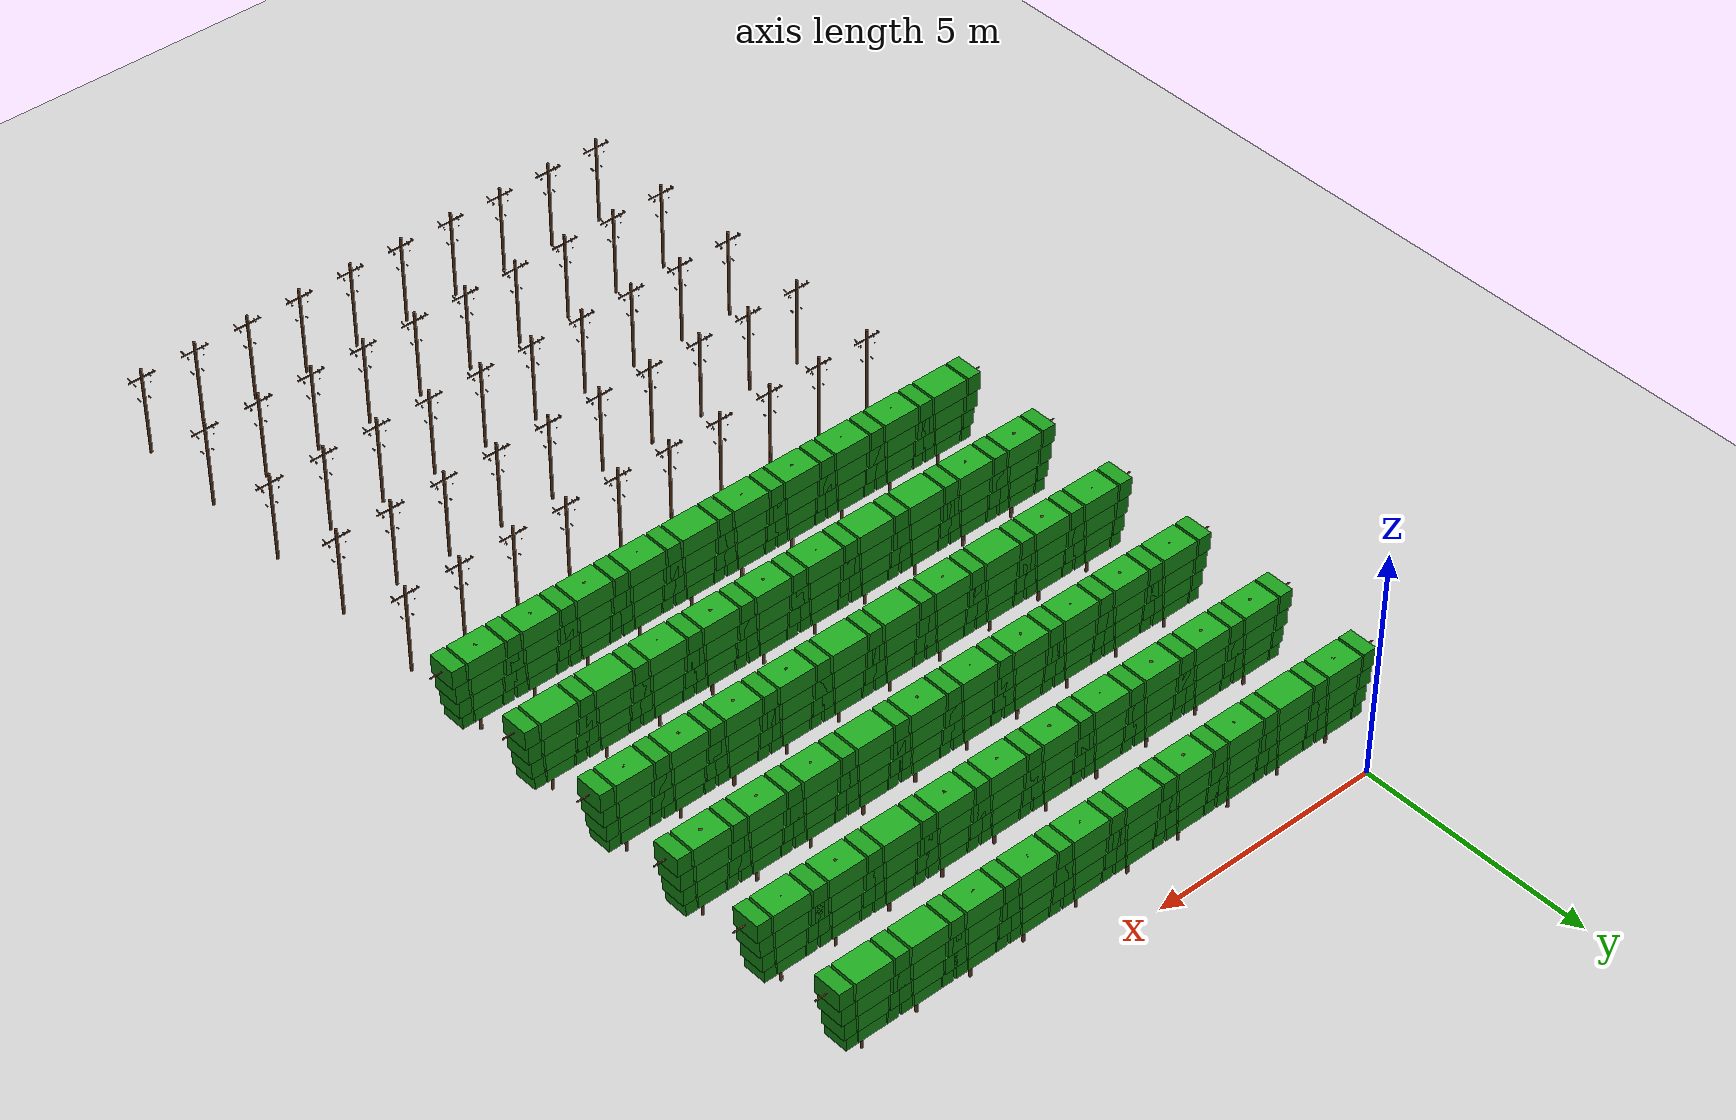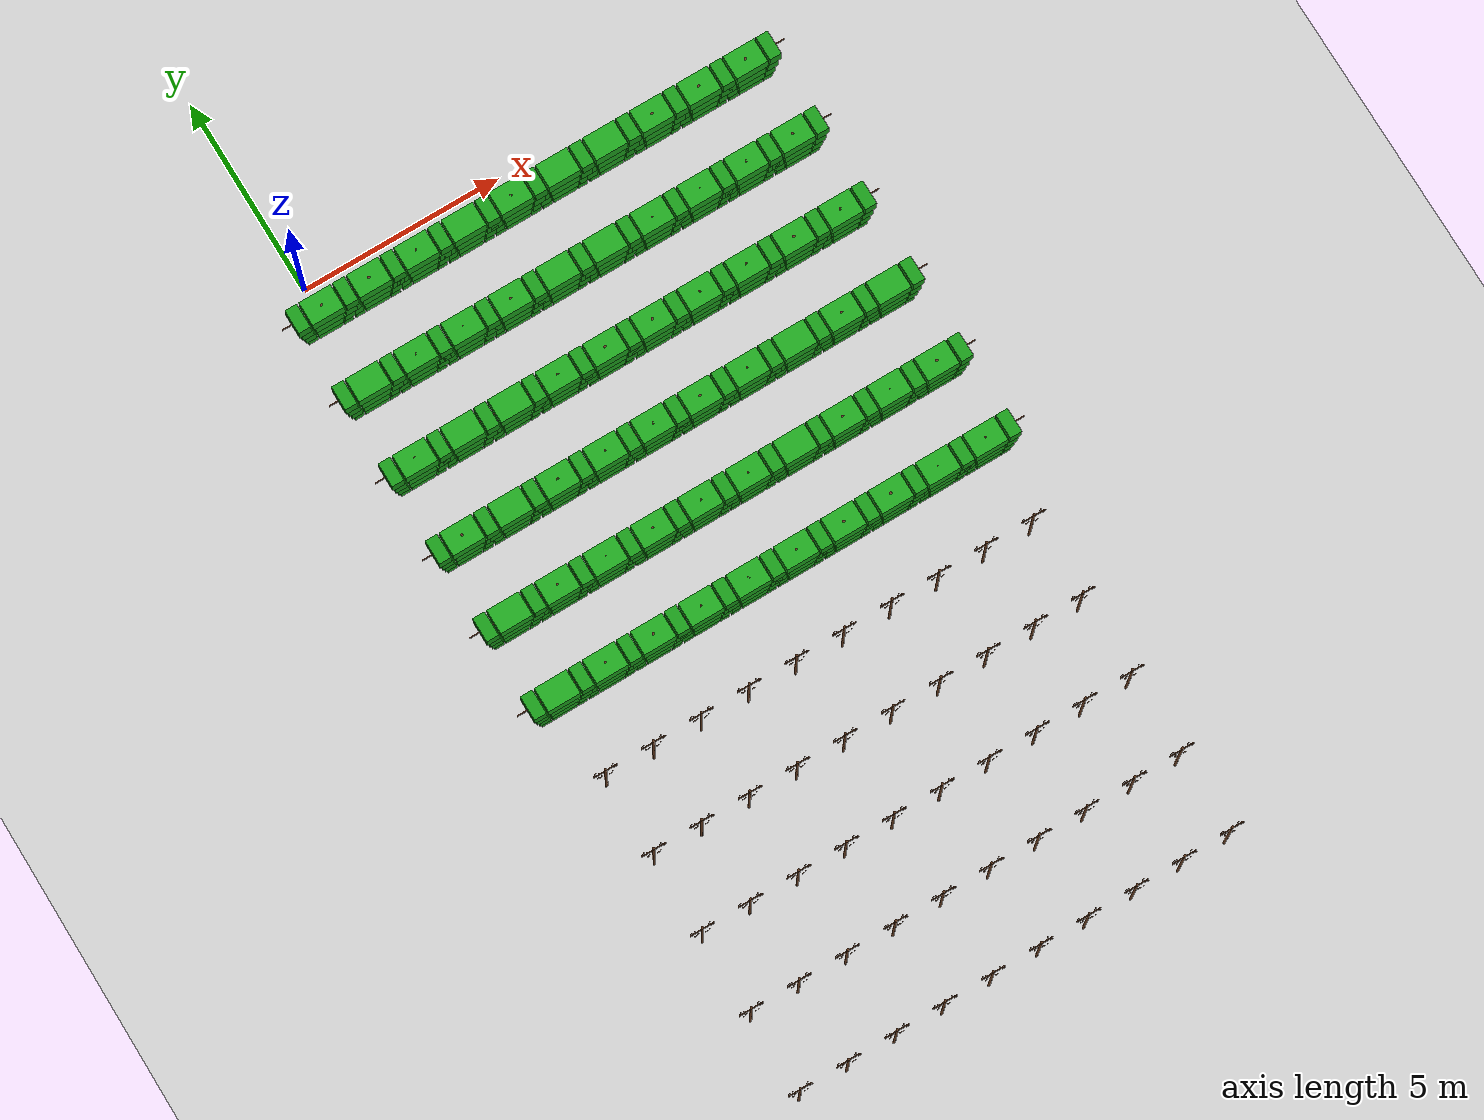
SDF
<?xml version="1.0" ?>
<sdf version="1.6">
  <world name="vineyard_world">

    <physics name="default_physics" default="0" type="ode">
      <max_step_size>0.001</max_step_size>
      <real_time_factor>1</real_time_factor>
      <real_time_update_rate>1000</real_time_update_rate>
    </physics>

    <gravity>0 0 -9.81</gravity>

    <scene>
      <ambient>0.4 0.4 0.4 1</ambient>
      <background>0.7 0.8 1 1</background>
      <shadows>true</shadows>
    </scene>

    <include>
      <uri>model://sun</uri>
    </include>

    <!-- Sol avec collision -->
    <model name="ground">
      <static>true</static>
      <link name="link">
        <collision name="collision">
          <geometry>
            <plane>
              <normal>0 0 1</normal>
              <size>100 100</size>
            </plane>
          </geometry>
          <surface>
            <friction>
              <ode>
                <mu>100</mu>
                <mu2>50</mu2>
              </ode>
            </friction>
          </surface>
        </collision>
        <visual name="visual">
          <geometry>
            <plane>
              <normal>0 0 1</normal>
              <size>100 100</size>
            </plane>
          </geometry>
          <material>
            <ambient>0.8 0.8 0.8 1</ambient>
            <diffuse>0.8 0.8 0.8 1</diffuse>
          </material>
        </visual>
      </link>
    </model>

    <!-- RANGÉE 1: y = -1.0 (AVEC feuilles) -->
    <include>
      <uri>model://vine_with_leaves</uri>
      <name>row1_vine_1</name>
      <pose>0 -1.0 0 0 0 0</pose>
    </include>
    <include>
      <uri>model://vine_with_leaves</uri>
      <name>row1_vine_2</name>
      <pose>1.2 -1.0 0 0 0 0</pose>
    </include>
    <include>
      <uri>model://vine_with_leaves</uri>
      <name>row1_vine_3</name>
      <pose>2.4 -1.0 0 0 0 0</pose>
    </include>
    <include>
      <uri>model://vine_with_leaves</uri>
      <name>row1_vine_4</name>
      <pose>3.6 -1.0 0 0 0 0</pose>
    </include>
    <include>
      <uri>model://vine_with_leaves</uri>
      <name>row1_vine_5</name>
      <pose>4.8 -1.0 0 0 0 0</pose>
    </include>
    <include>
      <uri>model://vine_with_leaves</uri>
      <name>row1_vine_6</name>
      <pose>6.0 -1.0 0 0 0 0</pose>
    </include>
    <include>
      <uri>model://vine_with_leaves</uri>
      <name>row1_vine_7</name>
      <pose>7.2 -1.0 0 0 0 0</pose>
    </include>
    <include>
      <uri>model://vine_with_leaves</uri>
      <name>row1_vine_8</name>
      <pose>8.4 -1.0 0 0 0 0</pose>
    </include>
    <include>
      <uri>model://vine_with_leaves</uri>
      <name>row1_vine_9</name>
      <pose>9.6 -1.0 0 0 0 0</pose>
    </include>
    <include>
      <uri>model://vine_with_leaves</uri>
      <name>row1_vine_10</name>
      <pose>10.8 -1.0 0 0 0 0</pose>
    </include>

    <!-- RANGÉE 2: y = -3.0 (AVEC feuilles) -->
    <include>
      <uri>model://vine_with_leaves</uri>
      <name>row2_vine_1</name>
      <pose>0 -3.0 0 0 0 0</pose>
    </include>
    <include>
      <uri>model://vine_with_leaves</uri>
      <name>row2_vine_2</name>
      <pose>1.2 -3.0 0 0 0 0</pose>
    </include>
    <include>
      <uri>model://vine_with_leaves</uri>
      <name>row2_vine_3</name>
      <pose>2.4 -3.0 0 0 0 0</pose>
    </include>
    <include>
      <uri>model://vine_with_leaves</uri>
      <name>row2_vine_4</name>
      <pose>3.6 -3.0 0 0 0 0</pose>
    </include>
    <include>
      <uri>model://vine_with_leaves</uri>
      <name>row2_vine_5</name>
      <pose>4.8 -3.0 0 0 0 0</pose>
    </include>
    <include>
      <uri>model://vine_with_leaves</uri>
      <name>row2_vine_6</name>
      <pose>6.0 -3.0 0 0 0 0</pose>
    </include>
    <include>
      <uri>model://vine_with_leaves</uri>
      <name>row2_vine_7</name>
      <pose>7.2 -3.0 0 0 0 0</pose>
    </include>
    <include>
      <uri>model://vine_with_leaves</uri>
      <name>row2_vine_8</name>
      <pose>8.4 -3.0 0 0 0 0</pose>
    </include>
    <include>
      <uri>model://vine_with_leaves</uri>
      <name>row2_vine_9</name>
      <pose>9.6 -3.0 0 0 0 0</pose>
    </include>
    <include>
      <uri>model://vine_with_leaves</uri>
      <name>row2_vine_10</name>
      <pose>10.8 -3.0 0 0 0 0</pose>
    </include>

    <!-- RANGÉE 3: y = -5.0 (AVEC feuilles) -->
    <include>
      <uri>model://vine_with_leaves</uri>
      <name>row3_vine_1</name>
      <pose>0 -5.0 0 0 0 0</pose>
    </include>
    <include>
      <uri>model://vine_with_leaves</uri>
      <name>row3_vine_2</name>
      <pose>1.2 -5.0 0 0 0 0</pose>
    </include>
    <include>
      <uri>model://vine_with_leaves</uri>
      <name>row3_vine_3</name>
      <pose>2.4 -5.0 0 0 0 0</pose>
    </include>
    <include>
      <uri>model://vine_with_leaves</uri>
      <name>row3_vine_4</name>
      <pose>3.6 -5.0 0 0 0 0</pose>
    </include>
    <include>
      <uri>model://vine_with_leaves</uri>
      <name>row3_vine_5</name>
      <pose>4.8 -5.0 0 0 0 0</pose>
    </include>
    <include>
      <uri>model://vine_with_leaves</uri>
      <name>row3_vine_6</name>
      <pose>6.0 -5.0 0 0 0 0</pose>
    </include>
    <include>
      <uri>model://vine_with_leaves</uri>
      <name>row3_vine_7</name>
      <pose>7.2 -5.0 0 0 0 0</pose>
    </include>
    <include>
      <uri>model://vine_with_leaves</uri>
      <name>row3_vine_8</name>
      <pose>8.4 -5.0 0 0 0 0</pose>
    </include>
    <include>
      <uri>model://vine_with_leaves</uri>
      <name>row3_vine_9</name>
      <pose>9.6 -5.0 0 0 0 0</pose>
    </include>
    <include>
      <uri>model://vine_with_leaves</uri>
      <name>row3_vine_10</name>
      <pose>10.8 -5.0 0 0 0 0</pose>
    </include>

    <!-- RANGÉE 4: y = -7.0 (AVEC feuilles) -->
    <include>
      <uri>model://vine_with_leaves</uri>
      <name>row4_vine_1</name>
      <pose>0 -7.0 0 0 0 0</pose>
    </include>
    <include>
      <uri>model://vine_with_leaves</uri>
      <name>row4_vine_2</name>
      <pose>1.2 -7.0 0 0 0 0</pose>
    </include>
    <include>
      <uri>model://vine_with_leaves</uri>
      <name>row4_vine_3</name>
      <pose>2.4 -7.0 0 0 0 0</pose>
    </include>
    <include>
      <uri>model://vine_with_leaves</uri>
      <name>row4_vine_4</name>
      <pose>3.6 -7.0 0 0 0 0</pose>
    </include>
    <include>
      <uri>model://vine_with_leaves</uri>
      <name>row4_vine_5</name>
      <pose>4.8 -7.0 0 0 0 0</pose>
    </include>
    <include>
      <uri>model://vine_with_leaves</uri>
      <name>row4_vine_6</name>
      <pose>6.0 -7.0 0 0 0 0</pose>
    </include>
    <include>
      <uri>model://vine_with_leaves</uri>
      <name>row4_vine_7</name>
      <pose>7.2 -7.0 0 0 0 0</pose>
    </include>
    <include>
      <uri>model://vine_with_leaves</uri>
      <name>row4_vine_8</name>
      <pose>8.4 -7.0 0 0 0 0</pose>
    </include>
    <include>
      <uri>model://vine_with_leaves</uri>
      <name>row4_vine_9</name>
      <pose>9.6 -7.0 0 0 0 0</pose>
    </include>
    <include>
      <uri>model://vine_with_leaves</uri>
      <name>row4_vine_10</name>
      <pose>10.8 -7.0 0 0 0 0</pose>
    </include>

    <!-- RANGÉE 5: y = -9.0 (AVEC feuilles) -->
    <include>
      <uri>model://vine_with_leaves</uri>
      <name>row5_vine_1</name>
      <pose>0 -9.0 0 0 0 0</pose>
    </include>
    <include>
      <uri>model://vine_with_leaves</uri>
      <name>row5_vine_2</name>
      <pose>1.2 -9.0 0 0 0 0</pose>
    </include>
    <include>
      <uri>model://vine_with_leaves</uri>
      <name>row5_vine_3</name>
      <pose>2.4 -9.0 0 0 0 0</pose>
    </include>
    <include>
      <uri>model://vine_with_leaves</uri>
      <name>row5_vine_4</name>
      <pose>3.6 -9.0 0 0 0 0</pose>
    </include>
    <include>
      <uri>model://vine_with_leaves</uri>
      <name>row5_vine_5</name>
      <pose>4.8 -9.0 0 0 0 0</pose>
    </include>
    <include>
      <uri>model://vine_with_leaves</uri>
      <name>row5_vine_6</name>
      <pose>6.0 -9.0 0 0 0 0</pose>
    </include>
    <include>
      <uri>model://vine_with_leaves</uri>
      <name>row5_vine_7</name>
      <pose>7.2 -9.0 0 0 0 0</pose>
    </include>
    <include>
      <uri>model://vine_with_leaves</uri>
      <name>row5_vine_8</name>
      <pose>8.4 -9.0 0 0 0 0</pose>
    </include>
    <include>
      <uri>model://vine_with_leaves</uri>
      <name>row5_vine_9</name>
      <pose>9.6 -9.0 0 0 0 0</pose>
    </include>
    <include>
      <uri>model://vine_with_leaves</uri>
      <name>row5_vine_10</name>
      <pose>10.8 -9.0 0 0 0 0</pose>
    </include>

    <!-- RANGÉE 6: y = -11.0 (AVEC feuilles) -->
    <include>
      <uri>model://vine_with_leaves</uri>
      <name>row6_vine_1</name>
      <pose>0 -11.0 0 0 0 0</pose>
    </include>
    <include>
      <uri>model://vine_with_leaves</uri>
      <name>row6_vine_2</name>
      <pose>1.2 -11.0 0 0 0 0</pose>
    </include>
    <include>
      <uri>model://vine_with_leaves</uri>
      <name>row6_vine_3</name>
      <pose>2.4 -11.0 0 0 0 0</pose>
    </include>
    <include>
      <uri>model://vine_with_leaves</uri>
      <name>row6_vine_4</name>
      <pose>3.6 -11.0 0 0 0 0</pose>
    </include>
    <include>
      <uri>model://vine_with_leaves</uri>
      <name>row6_vine_5</name>
      <pose>4.8 -11.0 0 0 0 0</pose>
    </include>
    <include>
      <uri>model://vine_with_leaves</uri>
      <name>row6_vine_6</name>
      <pose>6.0 -11.0 0 0 0 0</pose>
    </include>
    <include>
      <uri>model://vine_with_leaves</uri>
      <name>row6_vine_7</name>
      <pose>7.2 -11.0 0 0 0 0</pose>
    </include>
    <include>
      <uri>model://vine_with_leaves</uri>
      <name>row6_vine_8</name>
      <pose>8.4 -11.0 0 0 0 0</pose>
    </include>
    <include>
      <uri>model://vine_with_leaves</uri>
      <name>row6_vine_9</name>
      <pose>9.6 -11.0 0 0 0 0</pose>
    </include>
    <include>
      <uri>model://vine_with_leaves</uri>
      <name>row6_vine_10</name>
      <pose>10.8 -11.0 0 0 0 0</pose>
    </include>

    <!-- RANGÉE 7: y = -13.0 (SANS feuilles) -->
    <include>
      <uri>model://vine_without_leaves</uri>
      <name>row7_vine_1</name>
      <pose>0 -13.0 0 0 0 0</pose>
    </include>
    <include>
      <uri>model://vine_without_leaves</uri>
      <name>row7_vine_2</name>
      <pose>1.2 -13.0 0 0 0 0</pose>
    </include>
    <include>
      <uri>model://vine_without_leaves</uri>
      <name>row7_vine_3</name>
      <pose>2.4 -13.0 0 0 0 0</pose>
    </include>
    <include>
      <uri>model://vine_without_leaves</uri>
      <name>row7_vine_4</name>
      <pose>3.6 -13.0 0 0 0 0</pose>
    </include>
    <include>
      <uri>model://vine_without_leaves</uri>
      <name>row7_vine_5</name>
      <pose>4.8 -13.0 0 0 0 0</pose>
    </include>
    <include>
      <uri>model://vine_without_leaves</uri>
      <name>row7_vine_6</name>
      <pose>6.0 -13.0 0 0 0 0</pose>
    </include>
    <include>
      <uri>model://vine_without_leaves</uri>
      <name>row7_vine_7</name>
      <pose>7.2 -13.0 0 0 0 0</pose>
    </include>
    <include>
      <uri>model://vine_without_leaves</uri>
      <name>row7_vine_8</name>
      <pose>8.4 -13.0 0 0 0 0</pose>
    </include>
    <include>
      <uri>model://vine_without_leaves</uri>
      <name>row7_vine_9</name>
      <pose>9.6 -13.0 0 0 0 0</pose>
    </include>
    <include>
      <uri>model://vine_without_leaves</uri>
      <name>row7_vine_10</name>
      <pose>10.8 -13.0 0 0 0 0</pose>
    </include>

    <!-- RANGÉE 8: y = -15.0 (SANS feuilles) -->
    <include>
      <uri>model://vine_without_leaves</uri>
      <name>row8_vine_1</name>
      <pose>0 -15.0 0 0 0 0</pose>
    </include>
    <include>
      <uri>model://vine_without_leaves</uri>
      <name>row8_vine_2</name>
      <pose>1.2 -15.0 0 0 0 0</pose>
    </include>
    <include>
      <uri>model://vine_without_leaves</uri>
      <name>row8_vine_3</name>
      <pose>2.4 -15.0 0 0 0 0</pose>
    </include>
    <include>
      <uri>model://vine_without_leaves</uri>
      <name>row8_vine_4</name>
      <pose>3.6 -15.0 0 0 0 0</pose>
    </include>
    <include>
      <uri>model://vine_without_leaves</uri>
      <name>row8_vine_5</name>
      <pose>4.8 -15.0 0 0 0 0</pose>
    </include>
    <include>
      <uri>model://vine_without_leaves</uri>
      <name>row8_vine_6</name>
      <pose>6.0 -15.0 0 0 0 0</pose>
    </include>
    <include>
      <uri>model://vine_without_leaves</uri>
      <name>row8_vine_7</name>
      <pose>7.2 -15.0 0 0 0 0</pose>
    </include>
    <include>
      <uri>model://vine_without_leaves</uri>
      <name>row8_vine_8</name>
      <pose>8.4 -15.0 0 0 0 0</pose>
    </include>
    <include>
      <uri>model://vine_without_leaves</uri>
      <name>row8_vine_9</name>
      <pose>9.6 -15.0 0 0 0 0</pose>
    </include>
    <include>
      <uri>model://vine_without_leaves</uri>
      <name>row8_vine_10</name>
      <pose>10.8 -15.0 0 0 0 0</pose>
    </include>

    <!-- RANGÉE 9: y = -17.0 (SANS feuilles) -->
    <include>
      <uri>model://vine_without_leaves</uri>
      <name>row9_vine_1</name>
      <pose>0 -17.0 0 0 0 0</pose>
    </include>
    <include>
      <uri>model://vine_without_leaves</uri>
      <name>row9_vine_2</name>
      <pose>1.2 -17.0 0 0 0 0</pose>
    </include>
    <include>
      <uri>model://vine_without_leaves</uri>
      <name>row9_vine_3</name>
      <pose>2.4 -17.0 0 0 0 0</pose>
    </include>
    <include>
      <uri>model://vine_without_leaves</uri>
      <name>row9_vine_4</name>
      <pose>3.6 -17.0 0 0 0 0</pose>
    </include>
    <include>
      <uri>model://vine_without_leaves</uri>
      <name>row9_vine_5</name>
      <pose>4.8 -17.0 0 0 0 0</pose>
    </include>
    <include>
      <uri>model://vine_without_leaves</uri>
      <name>row9_vine_6</name>
      <pose>6.0 -17.0 0 0 0 0</pose>
    </include>
    <include>
      <uri>model://vine_without_leaves</uri>
      <name>row9_vine_7</name>
      <pose>7.2 -17.0 0 0 0 0</pose>
    </include>
    <include>
      <uri>model://vine_without_leaves</uri>
      <name>row9_vine_8</name>
      <pose>8.4 -17.0 0 0 0 0</pose>
    </include>
    <include>
      <uri>model://vine_without_leaves</uri>
      <name>row9_vine_9</name>
      <pose>9.6 -17.0 0 0 0 0</pose>
    </include>
    <include>
      <uri>model://vine_without_leaves</uri>
      <name>row9_vine_10</name>
      <pose>10.8 -17.0 0 0 0 0</pose>
    </include>

    <!-- RANGÉE 10: y = -19.0 (SANS feuilles) -->
    <include>
      <uri>model://vine_without_leaves</uri>
      <name>row10_vine_1</name>
      <pose>0 -19.0 0 0 0 0</pose>
    </include>
    <include>
      <uri>model://vine_without_leaves</uri>
      <name>row10_vine_2</name>
      <pose>1.2 -19.0 0 0 0 0</pose>
    </include>
    <include>
      <uri>model://vine_without_leaves</uri>
      <name>row10_vine_3</name>
      <pose>2.4 -19.0 0 0 0 0</pose>
    </include>
    <include>
      <uri>model://vine_without_leaves</uri>
      <name>row10_vine_4</name>
      <pose>3.6 -19.0 0 0 0 0</pose>
    </include>
    <include>
      <uri>model://vine_without_leaves</uri>
      <name>row10_vine_5</name>
      <pose>4.8 -19.0 0 0 0 0</pose>
    </include>
    <include>
      <uri>model://vine_without_leaves</uri>
      <name>row10_vine_6</name>
      <pose>6.0 -19.0 0 0 0 0</pose>
    </include>
    <include>
      <uri>model://vine_without_leaves</uri>
      <name>row10_vine_7</name>
      <pose>7.2 -19.0 0 0 0 0</pose>
    </include>
    <include>
      <uri>model://vine_without_leaves</uri>
      <name>row10_vine_8</name>
      <pose>8.4 -19.0 0 0 0 0</pose>
    </include>
    <include>
      <uri>model://vine_without_leaves</uri>
      <name>row10_vine_9</name>
      <pose>9.6 -19.0 0 0 0 0</pose>
    </include>
    <include>
      <uri>model://vine_without_leaves</uri>
      <name>row10_vine_10</name>
      <pose>10.8 -19.0 0 0 0 0</pose>
    </include>

    <!-- RANGÉE 11: y = -21.0 (SANS feuilles) -->
    <include>
      <uri>model://vine_without_leaves</uri>
      <name>row11_vine_1</name>
      <pose>0 -21.0 0 0 0 0</pose>
    </include>
    <include>
      <uri>model://vine_without_leaves</uri>
      <name>row11_vine_2</name>
      <pose>1.2 -21.0 0 0 0 0</pose>
    </include>
    <include>
      <uri>model://vine_without_leaves</uri>
      <name>row11_vine_3</name>
      <pose>2.4 -21.0 0 0 0 0</pose>
    </include>
    <include>
      <uri>model://vine_without_leaves</uri>
      <name>row11_vine_4</name>
      <pose>3.6 -21.0 0 0 0 0</pose>
    </include>
    <include>
      <uri>model://vine_without_leaves</uri>
      <name>row11_vine_5</name>
      <pose>4.8 -21.0 0 0 0 0</pose>
    </include>
    <include>
      <uri>model://vine_without_leaves</uri>
      <name>row11_vine_6</name>
      <pose>6.0 -21.0 0 0 0 0</pose>
    </include>
    <include>
      <uri>model://vine_without_leaves</uri>
      <name>row11_vine_7</name>
      <pose>7.2 -21.0 0 0 0 0</pose>
    </include>
    <include>
      <uri>model://vine_without_leaves</uri>
      <name>row11_vine_8</name>
      <pose>8.4 -21.0 0 0 0 0</pose>
    </include>
    <include>
      <uri>model://vine_without_leaves</uri>
      <name>row11_vine_9</name>
      <pose>9.6 -21.0 0 0 0 0</pose>
    </include>
    <include>
      <uri>model://vine_without_leaves</uri>
      <name>row11_vine_10</name>
      <pose>10.8 -21.0 0 0 0 0</pose>
    </include>

  </world>
</sdf>

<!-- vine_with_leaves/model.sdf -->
<sdf version="1.6">
  <model name="vine_plant_with_leaves">
    <static>true</static>
    <link name="link">

      <!-- TRONC PRINCIPAL (hauteur 2m) -->
      <collision name="trunk">
        <pose>0 0 1.0 0 0 0</pose>
        <geometry>
          <cylinder>
            <radius>0.03</radius>
            <length>2.0</length>
          </cylinder>
        </geometry>
      </collision>
      <visual name="trunk">
        <pose>0 0 1.0 0 0 0</pose>
        <geometry>
          <cylinder>
            <radius>0.03</radius>
            <length>2.0</length>
          </cylinder>
        </geometry>
        <material>
          <ambient>0.4 0.25 0.15 1</ambient>
          <diffuse>0.4 0.25 0.15 1</diffuse>
        </material>
      </visual>

      <!-- BRANCHES HORIZONTALES -->
      <collision name="branch_left">
        <pose>-0.5 0 1.8 0 1.57 0</pose>
        <geometry>
          <cylinder>
            <radius>0.015</radius>
            <length>1.0</length>
          </cylinder>
        </geometry>
      </collision>
      <visual name="branch_left">
        <pose>-0.5 0 1.8 0 1.57 0</pose>
        <geometry>
          <cylinder>
            <radius>0.015</radius>
            <length>1.0</length>
          </cylinder>
        </geometry>
        <material>
          <ambient>0.5 0.3 0.2 1</ambient>
          <diffuse>0.5 0.3 0.2 1</diffuse>
        </material>
      </visual>

      <collision name="branch_right">
        <pose>0.5 0 1.8 0 1.57 0</pose>
        <geometry>
          <cylinder>
            <radius>0.015</radius>
            <length>1.0</length>
          </cylinder>
        </geometry>
      </collision>
      <visual name="branch_right">
        <pose>0.5 0 1.8 0 1.57 0</pose>
        <geometry>
          <cylinder>
            <radius>0.015</radius>
            <length>1.0</length>
          </cylinder>
        </geometry>
        <material>
          <ambient>0.5 0.3 0.2 1</ambient>
          <diffuse>0.5 0.3 0.2 1</diffuse>
        </material>
      </visual>

      <!-- FEUILLAGE NIVEAU HAUT (1.8m) -->
      <visual name="leaves_left_top">
        <pose>-0.6 0 1.8 0 0 0</pose>
        <geometry>
          <box>
            <size>0.3 0.6 0.4</size>
          </box>
        </geometry>
        <material>
          <ambient>0.1 0.5 0.1 1</ambient>
          <diffuse>0.1 0.6 0.1 1</diffuse>
        </material>
      </visual>

      <visual name="leaves_right_top">
        <pose>0.6 0 1.8 0 0 0</pose>
        <geometry>
          <box>
            <size>0.3 0.6 0.4</size>
          </box>
        </geometry>
        <material>
          <ambient>0.1 0.5 0.1 1</ambient>
          <diffuse>0.1 0.6 0.1 1</diffuse>
        </material>
      </visual>

      <visual name="leaves_center_top">
        <pose>0 0 1.8 0 0 0</pose>
        <geometry>
          <box>
            <size>0.8 0.6 0.4</size>
          </box>
        </geometry>
        <material>
          <ambient>0.12 0.55 0.12 1</ambient>
          <diffuse>0.12 0.65 0.12 1</diffuse>
        </material>
      </visual>

      <!-- FEUILLAGE NIVEAU MOYEN-HAUT (1.4m) -->
      <visual name="leaves_left_mid_high">
        <pose>-0.55 0 1.4 0 0 0</pose>
        <geometry>
          <box>
            <size>0.28 0.58 0.38</size>
          </box>
        </geometry>
        <material>
          <ambient>0.1 0.5 0.1 1</ambient>
          <diffuse>0.1 0.6 0.1 1</diffuse>
        </material>
      </visual>

      <visual name="leaves_right_mid_high">
        <pose>0.55 0 1.4 0 0 0</pose>
        <geometry>
          <box>
            <size>0.28 0.58 0.38</size>
          </box>
        </geometry>
        <material>
          <ambient>0.1 0.5 0.1 1</ambient>
          <diffuse>0.1 0.6 0.1 1</diffuse>
        </material>
      </visual>

      <visual name="leaves_center_mid_high">
        <pose>0 0 1.4 0 0 0</pose>
        <geometry>
          <box>
            <size>0.7 0.58 0.38</size>
          </box>
        </geometry>
        <material>
          <ambient>0.12 0.55 0.12 1</ambient>
          <diffuse>0.12 0.65 0.12 1</diffuse>
        </material>
      </visual>

      <!-- FEUILLAGE NIVEAU MOYEN (1.0m) -->
      <visual name="leaves_left_mid">
        <pose>-0.5 0 1.0 0 0 0</pose>
        <geometry>
          <box>
            <size>0.26 0.55 0.36</size>
          </box>
        </geometry>
        <material>
          <ambient>0.1 0.5 0.1 1</ambient>
          <diffuse>0.1 0.6 0.1 1</diffuse>
        </material>
      </visual>

      <visual name="leaves_right_mid">
        <pose>0.5 0 1.0 0 0 0</pose>
        <geometry>
          <box>
            <size>0.26 0.55 0.36</size>
          </box>
        </geometry>
        <material>
          <ambient>0.1 0.5 0.1 1</ambient>
          <diffuse>0.1 0.6 0.1 1</diffuse>
        </material>
      </visual>

      <visual name="leaves_center_mid">
        <pose>0 0 1.0 0 0 0</pose>
        <geometry>
          <box>
            <size>0.65 0.55 0.36</size>
          </box>
        </geometry>
        <material>
          <ambient>0.12 0.55 0.12 1</ambient>
          <diffuse>0.12 0.65 0.12 1</diffuse>
        </material>
      </visual>

      <!-- FEUILLAGE NIVEAU BAS (0.7m) -->
      <visual name="leaves_left_low">
        <pose>-0.45 0 0.7 0 0 0</pose>
        <geometry>
          <box>
            <size>0.24 0.52 0.34</size>
          </box>
        </geometry>
        <material>
          <ambient>0.1 0.5 0.1 1</ambient>
          <diffuse>0.1 0.6 0.1 1</diffuse>
        </material>
      </visual>

      <visual name="leaves_right_low">
        <pose>0.45 0 0.7 0 0 0</pose>
        <geometry>
          <box>
            <size>0.24 0.52 0.34</size>
          </box>
        </geometry>
        <material>
          <ambient>0.1 0.5 0.1 1</ambient>
          <diffuse>0.1 0.6 0.1 1</diffuse>
        </material>
      </visual>

      <visual name="leaves_center_low">
        <pose>0 0 0.7 0 0 0</pose>
        <geometry>
          <box>
            <size>0.6 0.52 0.34</size>
          </box>
        </geometry>
        <material>
          <ambient>0.12 0.55 0.12 1</ambient>
          <diffuse>0.12 0.65 0.12 1</diffuse>
        </material>
      </visual>

      <!-- GRAPPES DE RAISIN -->
      <visual name="grape_left">
        <pose>-0.3 0 1.2 0 0 0</pose>
        <geometry>
          <sphere>
            <radius>0.08</radius>
          </sphere>
        </geometry>
        <material>
          <ambient>0.4 0.2 0.5 1</ambient>
          <diffuse>0.5 0.25 0.6 1</diffuse>
        </material>
      </visual>

      <visual name="grape_right">
        <pose>0.3 0 0.8 0 0 0</pose>
        <geometry>
          <sphere>
            <radius>0.08</radius>
          </sphere>
        </geometry>
        <material>
          <ambient>0.4 0.2 0.5 1</ambient>
          <diffuse>0.5 0.25 0.6 1</diffuse>
        </material>
      </visual>

    </link>
  </model>
</sdf>

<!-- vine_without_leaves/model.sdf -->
<sdf version="1.6">
  <model name="vine_plant_winter">
    <static>true</static>
    <link name="link">

      <!-- TRONC PRINCIPAL (hauteur 2m) -->
      <collision name="trunk">
        <pose>0 0 1.0 0 0 0</pose>
        <geometry>
          <cylinder>
            <radius>0.03</radius>
            <length>2.0</length>
          </cylinder>
        </geometry>
      </collision>
      <visual name="trunk">
        <pose>0 0 1.0 0 0 0</pose>
        <geometry>
          <cylinder>
            <radius>0.03</radius>
            <length>2.0</length>
          </cylinder>
        </geometry>
        <material>
          <ambient>0.35 0.2 0.1 1</ambient>
          <diffuse>0.35 0.2 0.1 1</diffuse>
        </material>
      </visual>

      <!-- BRANCHE GAUCHE -->
      <collision name="branch_left">
        <pose>-0.15 0 1.8 0 1.57 0</pose>
        <geometry>
          <cylinder>
            <radius>0.015</radius>
            <length>0.3</length>
          </cylinder>
        </geometry>
      </collision>
      <visual name="branch_left">
        <pose>-0.15 0 1.8 0 1.57 0</pose>
        <geometry>
          <cylinder>
            <radius>0.015</radius>
            <length>0.3</length>
          </cylinder>
        </geometry>
        <material>
          <ambient>0.4 0.25 0.15 1</ambient>
          <diffuse>0.4 0.25 0.15 1</diffuse>
        </material>
      </visual>

      <!-- BRANCHE DROITE -->
      <collision name="branch_right">
        <pose>0.15 0 1.8 0 1.57 0</pose>
        <geometry>
          <cylinder>
            <radius>0.015</radius>
            <length>0.3</length>
          </cylinder>
        </geometry>
      </collision>
      <visual name="branch_right">
        <pose>0.15 0 1.8 0 1.57 0</pose>
        <geometry>
          <cylinder>
            <radius>0.015</radius>
            <length>0.3</length>
          </cylinder>
        </geometry>
        <material>
          <ambient>0.4 0.25 0.15 1</ambient>
          <diffuse>0.4 0.25 0.15 1</diffuse>
        </material>
      </visual>

      <!-- SARMENTS SECONDAIRES GAUCHE -->
      <visual name="twig_left_1">
        <pose>-0.25 0.03 1.85 0 0.5 0.3</pose>
        <geometry>
          <cylinder>
            <radius>0.008</radius>
            <length>0.12</length>
          </cylinder>
        </geometry>
        <material>
          <ambient>0.45 0.3 0.2 1</ambient>
          <diffuse>0.45 0.3 0.2 1</diffuse>
        </material>
      </visual>

      <visual name="twig_left_2">
        <pose>-0.2 -0.05 1.75 0 0.4 -0.4</pose>
        <geometry>
          <cylinder>
            <radius>0.008</radius>
            <length>0.1</length>
          </cylinder>
        </geometry>
        <material>
          <ambient>0.45 0.3 0.2 1</ambient>
          <diffuse>0.45 0.3 0.2 1</diffuse>
        </material>
      </visual>

      <!-- SARMENTS SECONDAIRES DROITE -->
      <visual name="twig_right_1">
        <pose>0.25 -0.03 1.85 0 0.5 -0.3</pose>
        <geometry>
          <cylinder>
            <radius>0.008</radius>
            <length>0.12</length>
          </cylinder>
        </geometry>
        <material>
          <ambient>0.45 0.3 0.2 1</ambient>
          <diffuse>0.45 0.3 0.2 1</diffuse>
        </material>
      </visual>

      <visual name="twig_right_2">
        <pose>0.2 0.05 1.75 0 0.4 0.4</pose>
        <geometry>
          <cylinder>
            <radius>0.008</radius>
            <length>0.1</length>
          </cylinder>
        </geometry>
        <material>
          <ambient>0.45 0.3 0.2 1</ambient>
          <diffuse>0.45 0.3 0.2 1</diffuse>
        </material>
      </visual>

      <!-- SARMENTS MOYENS -->
      <visual name="twig_mid_left">
        <pose>-0.1 0.02 1.3 0 0.6 0.2</pose>
        <geometry>
          <cylinder>
            <radius>0.008</radius>
            <length>0.1</length>
          </cylinder>
        </geometry>
        <material>
          <ambient>0.45 0.3 0.2 1</ambient>
          <diffuse>0.45 0.3 0.2 1</diffuse>
        </material>
      </visual>

      <visual name="twig_mid_right">
        <pose>0.1 -0.02 1.3 0 0.6 -0.2</pose>
        <geometry>
          <cylinder>
            <radius>0.008</radius>
            <length>0.1</length>
          </cylinder>
        </geometry>
        <material>
          <ambient>0.45 0.3 0.2 1</ambient>
          <diffuse>0.45 0.3 0.2 1</diffuse>
        </material>
      </visual>

      <!-- BOURGEONS -->
      <visual name="bud_1">
        <pose>-0.25 0 1.85 0 0 0</pose>
        <geometry>
          <sphere>
            <radius>0.012</radius>
          </sphere>
        </geometry>
        <material>
          <ambient>0.3 0.15 0.1 1</ambient>
          <diffuse>0.3 0.15 0.1 1</diffuse>
        </material>
      </visual>

      <visual name="bud_2">
        <pose>0.25 0 1.85 0 0 0</pose>
        <geometry>
          <sphere>
            <radius>0.012</radius>
          </sphere>
        </geometry>
        <material>
          <ambient>0.3 0.15 0.1 1</ambient>
          <diffuse>0.3 0.15 0.1 1</diffuse>
        </material>
      </visual>

      <visual name="bud_3">
        <pose>-0.15 0.05 1.65 0 0 0</pose>
        <geometry>
          <sphere>
            <radius>0.01</radius>
          </sphere>
        </geometry>
        <material>
          <ambient>0.3 0.15 0.1 1</ambient>
          <diffuse>0.3 0.15 0.1 1</diffuse>
        </material>
      </visual>

      <visual name="bud_4">
        <pose>0.15 -0.05 1.65 0 0 0</pose>
        <geometry>
          <sphere>
            <radius>0.01</radius>
          </sphere>
        </geometry>
        <material>
          <ambient>0.3 0.15 0.1 1</ambient>
          <diffuse>0.3 0.15 0.1 1</diffuse>
        </material>
      </visual>

    </link>
  </model>
</sdf>
